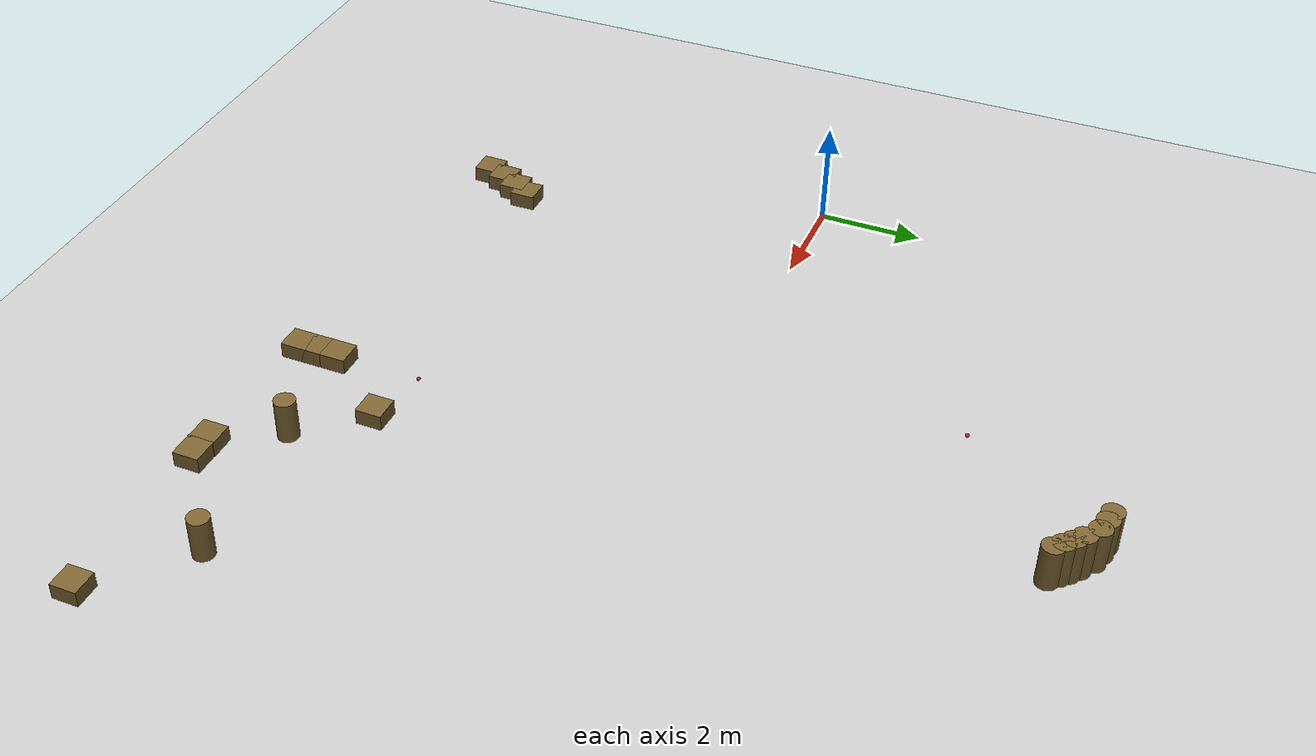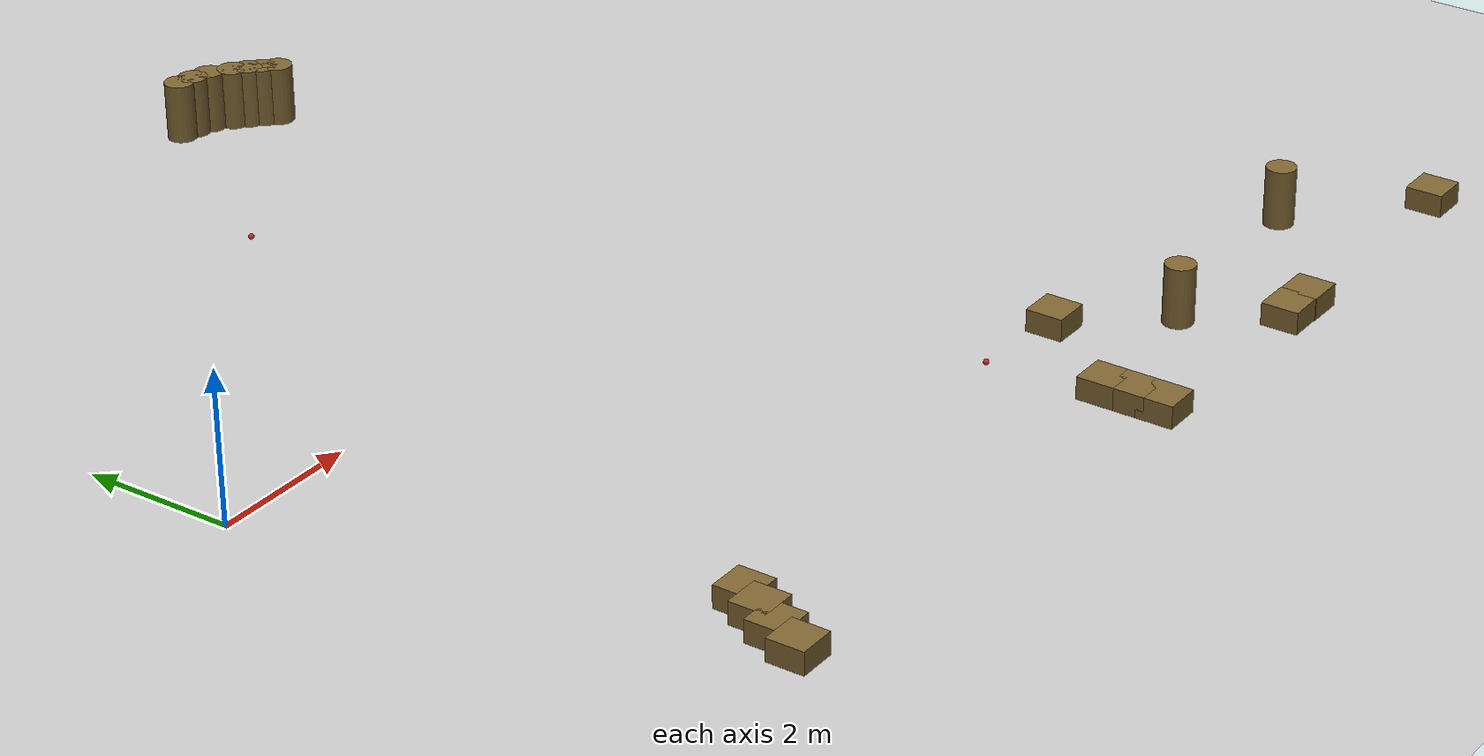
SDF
<sdf version="1.7">
 <world name="default">
  <model name="ground_plane">
   <static>1</static>
   <link name="link">
    <collision name="collision">
     <geometry><plane><normal>0 0 1</normal><size>100 100</size></plane></geometry>
     <surface><friction><ode><mu>100</mu><mu2>50</mu2></ode></friction></surface>
    </collision>
    <visual name="visual">
     <cast_shadows>0</cast_shadows>
     <geometry><plane><normal>0 0 1</normal><size>100 100</size></plane></geometry>
     <material>
      <script><uri>file://media/materials/scripts/gazebo.material</uri><name>Gazebo/Grey</name></script>
     </material>
    </visual>
   </link>
  </model>
  <model name="mini_cylinder_0_clone_0">
   <link name="link">
    <inertial>
     <mass>1</mass>
     <inertia><ixx>0.145833</ixx><ixy>0</ixy><ixz>0</ixz><iyy>0.145833</iyy><iyz>0</iyz><izz>0.125</izz></inertia>
    </inertial>
    <visual name="visual">
     <geometry><cylinder><radius>0.2</radius><length>0.8</length></cylinder></geometry>
     <material>
      <script><name>Gazebo/Grey</name><uri>file://media/materials/scripts/gazebo.material</uri></script>
      <shader type="vertex"><normal_map>__default__</normal_map></shader>
      <ambient>0.5 0.4 0.2 1</ambient>
      <diffuse>0.7 0.7 0.7 1</diffuse>
      <specular>0.01 0.01 0.01 1</specular>
      <emissive>0 0 0 1</emissive>
     </material>
    </visual>
    <collision name="collision">
     <geometry><cylinder><radius>0.2</radius><length>0.8</length></cylinder></geometry>
     <surface>
      <friction>
       <ode><mu>1</mu><mu2>1</mu2><fdir1>0 0 0</fdir1><slip1>0</slip1><slip2>0</slip2></ode>
       <torsional>
        <coefficient>1</coefficient>
        <patch_radius>0</patch_radius>
        <surface_radius>0</surface_radius>
        <use_patch_radius>1</use_patch_radius>
        <ode><slip>0</slip></ode>
       </torsional>
      </friction>
      <bounce><restitution_coefficient>0</restitution_coefficient><threshold>1e+06</threshold></bounce>
      <contact>
       <collide_without_contact>0</collide_without_contact>
       <collide_without_contact_bitmask>1</collide_without_contact_bitmask>
       <collide_bitmask>1</collide_bitmask>
       <ode>
        <soft_cfm>0</soft_cfm>
        <soft_erp>0.2</soft_erp>
        <kp>1e+13</kp>
        <kd>1</kd>
        <max_vel>0.01</max_vel>
        <min_depth>0</min_depth>
       </ode>
       <bullet>
        <split_impulse>1</split_impulse>
        <split_impulse_penetration_threshold>-0.01</split_impulse_penetration_threshold>
        <soft_cfm>0</soft_cfm>
        <soft_erp>0.2</soft_erp>
        <kp>1e+13</kp>
        <kd>1</kd>
       </bullet>
      </contact>
     </surface>
    </collision>
   </link>
   <static>1</static>
   <pose>8 6.85 0.4 0 -0 0</pose>
  </model>
  <model name="mini_cylinder_0_clone_0_clone">
   <link name="link">
    <inertial>
     <mass>1</mass>
     <inertia><ixx>0.145833</ixx><ixy>0</ixy><ixz>0</ixz><iyy>0.145833</iyy><iyz>0</iyz><izz>0.125</izz></inertia>
    </inertial>
    <visual name="visual">
     <geometry><cylinder><radius>0.2</radius><length>0.8</length></cylinder></geometry>
     <material>
      <script><name>Gazebo/Grey</name><uri>file://media/materials/scripts/gazebo.material</uri></script>
      <shader type="vertex"><normal_map>__default__</normal_map></shader>
      <ambient>0.5 0.4 0.2 1</ambient>
      <diffuse>0.7 0.7 0.7 1</diffuse>
      <specular>0.01 0.01 0.01 1</specular>
      <emissive>0 0 0 1</emissive>
     </material>
    </visual>
    <collision name="collision">
     <geometry><cylinder><radius>0.2</radius><length>0.8</length></cylinder></geometry>
     <surface>
      <friction>
       <ode><mu>1</mu><mu2>1</mu2><fdir1>0 0 0</fdir1><slip1>0</slip1><slip2>0</slip2></ode>
       <torsional>
        <coefficient>1</coefficient>
        <patch_radius>0</patch_radius>
        <surface_radius>0</surface_radius>
        <use_patch_radius>1</use_patch_radius>
        <ode><slip>0</slip></ode>
       </torsional>
      </friction>
      <bounce><restitution_coefficient>0</restitution_coefficient><threshold>1e+06</threshold></bounce>
      <contact>
       <collide_without_contact>0</collide_without_contact>
       <collide_without_contact_bitmask>1</collide_without_contact_bitmask>
       <collide_bitmask>1</collide_bitmask>
       <ode>
        <soft_cfm>0</soft_cfm>
        <soft_erp>0.2</soft_erp>
        <kp>1e+13</kp>
        <kd>1</kd>
        <max_vel>0.01</max_vel>
        <min_depth>0</min_depth>
       </ode>
       <bullet>
        <split_impulse>1</split_impulse>
        <split_impulse_penetration_threshold>-0.01</split_impulse_penetration_threshold>
        <soft_cfm>0</soft_cfm>
        <soft_erp>0.2</soft_erp>
        <kp>1e+13</kp>
        <kd>1</kd>
       </bullet>
      </contact>
     </surface>
    </collision>
   </link>
   <static>1</static>
   <pose>13.224 -6.11998 0.4 0 -0 0</pose>
  </model>
  <model name="mini_box_clone_clone_3_clone">
   <link name="link">
    <inertial>
     <mass>1</mass>
     <inertia>
      <ixx>0.166667</ixx>
      <ixy>0</ixy>
      <ixz>0</ixz>
      <iyy>0.166667</iyy>
      <iyz>0</iyz>
      <izz>0.166667</izz>
     </inertia>
    </inertial>
    <visual name="visual">
     <geometry><box><size>0.5 0.5 0.3</size></box></geometry>
     <material>
      <script><name>Gazebo/Grey</name><uri>file://media/materials/scripts/gazebo.material</uri></script>
      <shader type="vertex"><normal_map>__default__</normal_map></shader>
      <ambient>0.5 0.4 0.2 1</ambient>
      <diffuse>0.7 0.7 0.7 1</diffuse>
      <specular>0.01 0.01 0.01 1</specular>
      <emissive>0 0 0 1</emissive>
     </material>
    </visual>
    <collision name="collision">
     <geometry><box><size>0.5 0.5 0.3</size></box></geometry>
     <surface>
      <friction>
       <ode><mu>1</mu><mu2>1</mu2><fdir1>0 0 0</fdir1><slip1>0</slip1><slip2>0</slip2></ode>
       <torsional>
        <coefficient>1</coefficient>
        <patch_radius>0</patch_radius>
        <surface_radius>0</surface_radius>
        <use_patch_radius>1</use_patch_radius>
        <ode><slip>0</slip></ode>
       </torsional>
      </friction>
      <bounce><restitution_coefficient>0</restitution_coefficient><threshold>1e+06</threshold></bounce>
      <contact>
       <collide_without_contact>0</collide_without_contact>
       <collide_without_contact_bitmask>1</collide_without_contact_bitmask>
       <collide_bitmask>1</collide_bitmask>
       <ode>
        <soft_cfm>0</soft_cfm>
        <soft_erp>0.2</soft_erp>
        <kp>1e+13</kp>
        <kd>1</kd>
        <max_vel>0.01</max_vel>
        <min_depth>0</min_depth>
       </ode>
       <bullet>
        <split_impulse>1</split_impulse>
        <split_impulse_penetration_threshold>-0.01</split_impulse_penetration_threshold>
        <soft_cfm>0</soft_cfm>
        <soft_erp>0.2</soft_erp>
        <kp>1e+13</kp>
        <kd>1</kd>
       </bullet>
      </contact>
     </surface>
    </collision>
   </link>
   <static>1</static>
   <pose>11.3808 -7.50629 0.15 0 -0 0</pose>
  </model>
  <model name="mini_box_clone_clone_3_clone_2">
   <link name="link">
    <inertial>
     <mass>1</mass>
     <inertia>
      <ixx>0.166667</ixx>
      <ixy>0</ixy>
      <ixz>0</ixz>
      <iyy>0.166667</iyy>
      <iyz>0</iyz>
      <izz>0.166667</izz>
     </inertia>
    </inertial>
    <visual name="visual">
     <geometry><box><size>0.5 0.5 0.3</size></box></geometry>
     <material>
      <script><name>Gazebo/Grey</name><uri>file://media/materials/scripts/gazebo.material</uri></script>
      <shader type="vertex"><normal_map>__default__</normal_map></shader>
      <ambient>0.5 0.4 0.2 1</ambient>
      <diffuse>0.7 0.7 0.7 1</diffuse>
      <specular>0.01 0.01 0.01 1</specular>
      <emissive>0 0 0 1</emissive>
     </material>
    </visual>
    <collision name="collision">
     <geometry><box><size>0.5 0.5 0.3</size></box></geometry>
     <surface>
      <friction>
       <ode><mu>1</mu><mu2>1</mu2><fdir1>0 0 0</fdir1><slip1>0</slip1><slip2>0</slip2></ode>
       <torsional>
        <coefficient>1</coefficient>
        <patch_radius>0</patch_radius>
        <surface_radius>0</surface_radius>
        <use_patch_radius>1</use_patch_radius>
        <ode><slip>0</slip></ode>
       </torsional>
      </friction>
      <bounce><restitution_coefficient>0</restitution_coefficient><threshold>1e+06</threshold></bounce>
      <contact>
       <collide_without_contact>0</collide_without_contact>
       <collide_without_contact_bitmask>1</collide_without_contact_bitmask>
       <collide_bitmask>1</collide_bitmask>
       <ode>
        <soft_cfm>0</soft_cfm>
        <soft_erp>0.2</soft_erp>
        <kp>1e+13</kp>
        <kd>1</kd>
        <max_vel>0.01</max_vel>
        <min_depth>0</min_depth>
       </ode>
       <bullet>
        <split_impulse>1</split_impulse>
        <split_impulse_penetration_threshold>-0.01</split_impulse_penetration_threshold>
        <soft_cfm>0</soft_cfm>
        <soft_erp>0.2</soft_erp>
        <kp>1e+13</kp>
        <kd>1</kd>
       </bullet>
      </contact>
     </surface>
    </collision>
   </link>
   <static>1</static>
   <pose>14.767 -7.51176 0.15 0 -0 0</pose>
  </model>
  <model name="mini_cylinder_0_clone_0_clone_clone">
   <link name="link">
    <inertial>
     <mass>1</mass>
     <inertia><ixx>0.145833</ixx><ixy>0</ixy><ixz>0</ixz><iyy>0.145833</iyy><iyz>0</iyz><izz>0.125</izz></inertia>
    </inertial>
    <visual name="visual">
     <geometry><cylinder><radius>0.2</radius><length>0.8</length></cylinder></geometry>
     <material>
      <script><name>Gazebo/Grey</name><uri>file://media/materials/scripts/gazebo.material</uri></script>
      <shader type="vertex"><normal_map>__default__</normal_map></shader>
      <ambient>0.5 0.4 0.2 1</ambient>
      <diffuse>0.7 0.7 0.7 1</diffuse>
      <specular>0.01 0.01 0.01 1</specular>
      <emissive>0 0 0 1</emissive>
     </material>
    </visual>
    <collision name="collision">
     <geometry><cylinder><radius>0.2</radius><length>0.8</length></cylinder></geometry>
     <surface>
      <friction>
       <ode><mu>1</mu><mu2>1</mu2><fdir1>0 0 0</fdir1><slip1>0</slip1><slip2>0</slip2></ode>
       <torsional>
        <coefficient>1</coefficient>
        <patch_radius>0</patch_radius>
        <surface_radius>0</surface_radius>
        <use_patch_radius>1</use_patch_radius>
        <ode><slip>0</slip></ode>
       </torsional>
      </friction>
      <bounce><restitution_coefficient>0</restitution_coefficient><threshold>1e+06</threshold></bounce>
      <contact>
       <collide_without_contact>0</collide_without_contact>
       <collide_without_contact_bitmask>1</collide_without_contact_bitmask>
       <collide_bitmask>1</collide_bitmask>
       <ode>
        <soft_cfm>0</soft_cfm>
        <soft_erp>0.2</soft_erp>
        <kp>1e+13</kp>
        <kd>1</kd>
        <max_vel>0.01</max_vel>
        <min_depth>0</min_depth>
       </ode>
       <bullet>
        <split_impulse>1</split_impulse>
        <split_impulse_penetration_threshold>-0.01</split_impulse_penetration_threshold>
        <soft_cfm>0</soft_cfm>
        <soft_erp>0.2</soft_erp>
        <kp>1e+13</kp>
        <kd>1</kd>
       </bullet>
      </contact>
     </surface>
    </collision>
   </link>
   <static>1</static>
   <pose>10.1744 -6.38296 0.4 0 -0 0</pose>
  </model>
  <model name="target_0">
   <link name="link">
    <pose>0 0 0.0375 0 -0 0</pose>
    <inertial>
     <mass>0.1467</mass>
     <inertia>
      <ixx>8.25187e-05</ixx>
      <ixy>0</ixy>
      <ixz>0</ixz>
      <iyy>8.25187e-05</iyy>
      <iyz>0</iyz>
      <izz>8.25187e-05</izz>
     </inertia>
    </inertial>
    <velocity_decay><linear>0</linear><angular>0.005</angular></velocity_decay>
    <visual name="visual">
     <geometry><sphere><radius>0.0375</radius></sphere></geometry>
     <material>
      <script><uri>file://media/materials/scripts/gazebo.material</uri><name>Gazebo/Red</name></script>
      <shader type="pixel"/>
     </material>
    </visual>
    <collision name="collision">
     <geometry><sphere><radius>0.0375</radius></sphere></geometry>
     <surface>
      <friction>
       <ode><mu>1</mu><mu2>1</mu2><fdir1>0 0 0</fdir1><slip1>0</slip1><slip2>0</slip2></ode>
       <torsional>
        <coefficient>1</coefficient>
        <patch_radius>0</patch_radius>
        <surface_radius>0.01</surface_radius>
        <use_patch_radius>0</use_patch_radius>
        <ode><slip>0</slip></ode>
       </torsional>
      </friction>
      <bounce><restitution_coefficient>0</restitution_coefficient><threshold>1e+06</threshold></bounce>
      <contact>
       <collide_without_contact>0</collide_without_contact>
       <collide_without_contact_bitmask>1</collide_without_contact_bitmask>
       <collide_bitmask>1</collide_bitmask>
       <ode>
        <soft_cfm>0</soft_cfm>
        <soft_erp>0.2</soft_erp>
        <kp>100000</kp>
        <kd>100</kd>
        <max_vel>100</max_vel>
        <min_depth>0.001</min_depth>
       </ode>
       <bullet>
        <split_impulse>1</split_impulse>
        <split_impulse_penetration_threshold>-0.01</split_impulse_penetration_threshold>
        <soft_cfm>0</soft_cfm>
        <soft_erp>0.2</soft_erp>
        <kp>100000</kp>
        <kd>100</kd>
       </bullet>
      </contact>
     </surface>
    </collision>
   </link>
   <static>0</static>
   <pose>5.5098 4.40714 -0.001014 0 -0 0</pose>
  </model>
  <model name="target_3">
   <link name="link">
    <pose>0 0 0.0375 0 -0 0</pose>
    <inertial>
     <mass>0.1467</mass>
     <inertia>
      <ixx>8.25187e-05</ixx>
      <ixy>0</ixy>
      <ixz>0</ixz>
      <iyy>8.25187e-05</iyy>
      <iyz>0</iyz>
      <izz>8.25187e-05</izz>
     </inertia>
    </inertial>
    <velocity_decay><linear>0</linear><angular>0.005</angular></velocity_decay>
    <visual name="visual">
     <geometry><sphere><radius>0.0375</radius></sphere></geometry>
     <material>
      <script><uri>file://media/materials/scripts/gazebo.material</uri><name>Gazebo/Red</name></script>
      <shader type="pixel"/>
     </material>
    </visual>
    <collision name="collision">
     <geometry><sphere><radius>0.0375</radius></sphere></geometry>
     <surface>
      <friction>
       <ode><mu>1</mu><mu2>1</mu2><fdir1>0 0 0</fdir1><slip1>0</slip1><slip2>0</slip2></ode>
       <torsional>
        <coefficient>1</coefficient>
        <patch_radius>0</patch_radius>
        <surface_radius>0.01</surface_radius>
        <use_patch_radius>0</use_patch_radius>
        <ode><slip>0</slip></ode>
       </torsional>
      </friction>
      <bounce><restitution_coefficient>0</restitution_coefficient><threshold>1e+06</threshold></bounce>
      <contact>
       <collide_without_contact>0</collide_without_contact>
       <collide_without_contact_bitmask>1</collide_without_contact_bitmask>
       <collide_bitmask>1</collide_bitmask>
       <ode>
        <soft_cfm>0</soft_cfm>
        <soft_erp>0.2</soft_erp>
        <kp>100000</kp>
        <kd>100</kd>
        <max_vel>100</max_vel>
        <min_depth>0.001</min_depth>
       </ode>
       <bullet>
        <split_impulse>1</split_impulse>
        <split_impulse_penetration_threshold>-0.01</split_impulse_penetration_threshold>
        <soft_cfm>0</soft_cfm>
        <soft_erp>0.2</soft_erp>
        <kp>100000</kp>
        <kd>100</kd>
       </bullet>
      </contact>
     </surface>
    </collision>
   </link>
   <static>0</static>
   <pose>7.94169 -5.02618 -0.001014 0 -0 0</pose>
  </model>
  <model name="mini_cylinder_0_clone_0_clone_5">
   <link name="link">
    <inertial>
     <mass>1</mass>
     <inertia><ixx>0.145833</ixx><ixy>0</ixy><ixz>0</ixz><iyy>0.145833</iyy><iyz>0</iyz><izz>0.125</izz></inertia>
    </inertial>
    <visual name="visual">
     <geometry><cylinder><radius>0.2</radius><length>0.8</length></cylinder></geometry>
     <material>
      <script><name>Gazebo/Grey</name><uri>file://media/materials/scripts/gazebo.material</uri></script>
      <shader type="vertex"><normal_map>__default__</normal_map></shader>
      <ambient>0.5 0.4 0.2 1</ambient>
      <diffuse>0.7 0.7 0.7 1</diffuse>
      <specular>0.01 0.01 0.01 1</specular>
      <emissive>0 0 0 1</emissive>
     </material>
    </visual>
    <collision name="collision">
     <geometry><cylinder><radius>0.2</radius><length>0.8</length></cylinder></geometry>
     <surface>
      <friction>
       <ode><mu>1</mu><mu2>1</mu2><fdir1>0 0 0</fdir1><slip1>0</slip1><slip2>0</slip2></ode>
       <torsional>
        <coefficient>1</coefficient>
        <patch_radius>0</patch_radius>
        <surface_radius>0</surface_radius>
        <use_patch_radius>1</use_patch_radius>
        <ode><slip>0</slip></ode>
       </torsional>
      </friction>
      <bounce><restitution_coefficient>0</restitution_coefficient><threshold>1e+06</threshold></bounce>
      <contact>
       <collide_without_contact>0</collide_without_contact>
       <collide_without_contact_bitmask>1</collide_without_contact_bitmask>
       <collide_bitmask>1</collide_bitmask>
       <ode>
        <soft_cfm>0</soft_cfm>
        <soft_erp>0.2</soft_erp>
        <kp>1e+13</kp>
        <kd>1</kd>
        <max_vel>0.01</max_vel>
        <min_depth>0</min_depth>
       </ode>
       <bullet>
        <split_impulse>1</split_impulse>
        <split_impulse_penetration_threshold>-0.01</split_impulse_penetration_threshold>
        <soft_cfm>0</soft_cfm>
        <soft_erp>0.2</soft_erp>
        <kp>1e+13</kp>
        <kd>1</kd>
       </bullet>
      </contact>
     </surface>
    </collision>
   </link>
   <static>1</static>
   <pose>7.7482 7.04047 0.4 0 -0 0</pose>
  </model>
  <model name="mini_cylinder_0_clone_0_clone_6">
   <link name="link">
    <inertial>
     <mass>1</mass>
     <inertia><ixx>0.145833</ixx><ixy>0</ixy><ixz>0</ixz><iyy>0.145833</iyy><iyz>0</iyz><izz>0.125</izz></inertia>
    </inertial>
    <visual name="visual">
     <geometry><cylinder><radius>0.2</radius><length>0.8</length></cylinder></geometry>
     <material>
      <script><name>Gazebo/Grey</name><uri>file://media/materials/scripts/gazebo.material</uri></script>
      <shader type="vertex"><normal_map>__default__</normal_map></shader>
      <ambient>0.5 0.4 0.2 1</ambient>
      <diffuse>0.7 0.7 0.7 1</diffuse>
      <specular>0.01 0.01 0.01 1</specular>
      <emissive>0 0 0 1</emissive>
     </material>
    </visual>
    <collision name="collision">
     <geometry><cylinder><radius>0.2</radius><length>0.8</length></cylinder></geometry>
     <surface>
      <friction>
       <ode><mu>1</mu><mu2>1</mu2><fdir1>0 0 0</fdir1><slip1>0</slip1><slip2>0</slip2></ode>
       <torsional>
        <coefficient>1</coefficient>
        <patch_radius>0</patch_radius>
        <surface_radius>0</surface_radius>
        <use_patch_radius>1</use_patch_radius>
        <ode><slip>0</slip></ode>
       </torsional>
      </friction>
      <bounce><restitution_coefficient>0</restitution_coefficient><threshold>1e+06</threshold></bounce>
      <contact>
       <collide_without_contact>0</collide_without_contact>
       <collide_without_contact_bitmask>1</collide_without_contact_bitmask>
       <collide_bitmask>1</collide_bitmask>
       <ode>
        <soft_cfm>0</soft_cfm>
        <soft_erp>0.2</soft_erp>
        <kp>1e+13</kp>
        <kd>1</kd>
        <max_vel>0.01</max_vel>
        <min_depth>0</min_depth>
       </ode>
       <bullet>
        <split_impulse>1</split_impulse>
        <split_impulse_penetration_threshold>-0.01</split_impulse_penetration_threshold>
        <soft_cfm>0</soft_cfm>
        <soft_erp>0.2</soft_erp>
        <kp>1e+13</kp>
        <kd>1</kd>
       </bullet>
      </contact>
     </surface>
    </collision>
   </link>
   <static>1</static>
   <pose>7.50695 7.1078 0.4 0 -0 0</pose>
  </model>
  <model name="mini_cylinder_0_clone_0_clone_7">
   <link name="link">
    <inertial>
     <mass>1</mass>
     <inertia><ixx>0.145833</ixx><ixy>0</ixy><ixz>0</ixz><iyy>0.145833</iyy><iyz>0</iyz><izz>0.125</izz></inertia>
    </inertial>
    <visual name="visual">
     <geometry><cylinder><radius>0.2</radius><length>0.8</length></cylinder></geometry>
     <material>
      <script><name>Gazebo/Grey</name><uri>file://media/materials/scripts/gazebo.material</uri></script>
      <shader type="vertex"><normal_map>__default__</normal_map></shader>
      <ambient>0.5 0.4 0.2 1</ambient>
      <diffuse>0.7 0.7 0.7 1</diffuse>
      <specular>0.01 0.01 0.01 1</specular>
      <emissive>0 0 0 1</emissive>
     </material>
    </visual>
    <collision name="collision">
     <geometry><cylinder><radius>0.2</radius><length>0.8</length></cylinder></geometry>
     <surface>
      <friction>
       <ode><mu>1</mu><mu2>1</mu2><fdir1>0 0 0</fdir1><slip1>0</slip1><slip2>0</slip2></ode>
       <torsional>
        <coefficient>1</coefficient>
        <patch_radius>0</patch_radius>
        <surface_radius>0</surface_radius>
        <use_patch_radius>1</use_patch_radius>
        <ode><slip>0</slip></ode>
       </torsional>
      </friction>
      <bounce><restitution_coefficient>0</restitution_coefficient><threshold>1e+06</threshold></bounce>
      <contact>
       <collide_without_contact>0</collide_without_contact>
       <collide_without_contact_bitmask>1</collide_without_contact_bitmask>
       <collide_bitmask>1</collide_bitmask>
       <ode>
        <soft_cfm>0</soft_cfm>
        <soft_erp>0.2</soft_erp>
        <kp>1e+13</kp>
        <kd>1</kd>
        <max_vel>0.01</max_vel>
        <min_depth>0</min_depth>
       </ode>
       <bullet>
        <split_impulse>1</split_impulse>
        <split_impulse_penetration_threshold>-0.01</split_impulse_penetration_threshold>
        <soft_cfm>0</soft_cfm>
        <soft_erp>0.2</soft_erp>
        <kp>1e+13</kp>
        <kd>1</kd>
       </bullet>
      </contact>
     </surface>
    </collision>
   </link>
   <static>1</static>
   <pose>7.28252 7.14141 0.4 0 -0 0</pose>
  </model>
  <model name="mini_box_clone_clone_0_clone_7">
   <link name="link">
    <inertial>
     <mass>1</mass>
     <inertia>
      <ixx>0.166667</ixx>
      <ixy>0</ixy>
      <ixz>0</ixz>
      <iyy>0.166667</iyy>
      <iyz>0</iyz>
      <izz>0.166667</izz>
     </inertia>
    </inertial>
    <visual name="visual">
     <geometry><box><size>0.5 0.5 0.3</size></box></geometry>
     <material>
      <script><name>Gazebo/Grey</name><uri>file://media/materials/scripts/gazebo.material</uri></script>
      <shader type="vertex"><normal_map>__default__</normal_map></shader>
      <ambient>0.5 0.4 0.2 1</ambient>
      <diffuse>0.7 0.7 0.7 1</diffuse>
      <specular>0.01 0.01 0.01 1</specular>
      <emissive>0 0 0 1</emissive>
     </material>
    </visual>
    <collision name="collision">
     <geometry><box><size>0.5 0.5 0.3</size></box></geometry>
     <surface>
      <friction>
       <ode><mu>1</mu><mu2>1</mu2><fdir1>0 0 0</fdir1><slip1>0</slip1><slip2>0</slip2></ode>
       <torsional>
        <coefficient>1</coefficient>
        <patch_radius>0</patch_radius>
        <surface_radius>0</surface_radius>
        <use_patch_radius>1</use_patch_radius>
        <ode><slip>0</slip></ode>
       </torsional>
      </friction>
      <bounce><restitution_coefficient>0</restitution_coefficient><threshold>1e+06</threshold></bounce>
      <contact>
       <collide_without_contact>0</collide_without_contact>
       <collide_without_contact_bitmask>1</collide_without_contact_bitmask>
       <collide_bitmask>1</collide_bitmask>
       <ode>
        <soft_cfm>0</soft_cfm>
        <soft_erp>0.2</soft_erp>
        <kp>1e+13</kp>
        <kd>1</kd>
        <max_vel>0.01</max_vel>
        <min_depth>0</min_depth>
       </ode>
       <bullet>
        <split_impulse>1</split_impulse>
        <split_impulse_penetration_threshold>-0.01</split_impulse_penetration_threshold>
        <soft_cfm>0</soft_cfm>
        <soft_erp>0.2</soft_erp>
        <kp>1e+13</kp>
        <kd>1</kd>
       </bullet>
      </contact>
     </surface>
    </collision>
   </link>
   <static>1</static>
   <pose>10.9272 -7.496 0.15 0 -0 0</pose>
  </model>
  <model name="mini_box_clone_clone_0_clone_15">
   <link name="link">
    <inertial>
     <mass>1</mass>
     <inertia>
      <ixx>0.166667</ixx>
      <ixy>0</ixy>
      <ixz>0</ixz>
      <iyy>0.166667</iyy>
      <iyz>0</iyz>
      <izz>0.166667</izz>
     </inertia>
    </inertial>
    <visual name="visual">
     <geometry><box><size>0.5 0.5 0.3</size></box></geometry>
     <material>
      <script><name>Gazebo/Grey</name><uri>file://media/materials/scripts/gazebo.material</uri></script>
      <shader type="vertex"><normal_map>__default__</normal_map></shader>
      <ambient>0.5 0.4 0.2 1</ambient>
      <diffuse>0.7 0.7 0.7 1</diffuse>
      <specular>0.01 0.01 0.01 1</specular>
      <emissive>0 0 0 1</emissive>
     </material>
    </visual>
    <collision name="collision">
     <geometry><box><size>0.5 0.5 0.3</size></box></geometry>
     <surface>
      <friction>
       <ode><mu>1</mu><mu2>1</mu2><fdir1>0 0 0</fdir1><slip1>0</slip1><slip2>0</slip2></ode>
       <torsional>
        <coefficient>1</coefficient>
        <patch_radius>0</patch_radius>
        <surface_radius>0</surface_radius>
        <use_patch_radius>1</use_patch_radius>
        <ode><slip>0</slip></ode>
       </torsional>
      </friction>
      <bounce><restitution_coefficient>0</restitution_coefficient><threshold>1e+06</threshold></bounce>
      <contact>
       <collide_without_contact>0</collide_without_contact>
       <collide_without_contact_bitmask>1</collide_without_contact_bitmask>
       <collide_bitmask>1</collide_bitmask>
       <ode>
        <soft_cfm>0</soft_cfm>
        <soft_erp>0.2</soft_erp>
        <kp>1e+13</kp>
        <kd>1</kd>
        <max_vel>0.01</max_vel>
        <min_depth>0</min_depth>
       </ode>
       <bullet>
        <split_impulse>1</split_impulse>
        <split_impulse_penetration_threshold>-0.01</split_impulse_penetration_threshold>
        <soft_cfm>0</soft_cfm>
        <soft_erp>0.2</soft_erp>
        <kp>1e+13</kp>
        <kd>1</kd>
       </bullet>
      </contact>
     </surface>
    </collision>
   </link>
   <static>1</static>
   <pose>8.07022 -6.5893 0.15 0 -0 0</pose>
  </model>
  <model name="mini_box_clone_clone_0_clone_16">
   <link name="link">
    <inertial>
     <mass>1</mass>
     <inertia>
      <ixx>0.166667</ixx>
      <ixy>0</ixy>
      <ixz>0</ixz>
      <iyy>0.166667</iyy>
      <iyz>0</iyz>
      <izz>0.166667</izz>
     </inertia>
    </inertial>
    <visual name="visual">
     <geometry><box><size>0.5 0.5 0.3</size></box></geometry>
     <material>
      <script><name>Gazebo/Grey</name><uri>file://media/materials/scripts/gazebo.material</uri></script>
      <shader type="vertex"><normal_map>__default__</normal_map></shader>
      <ambient>0.5 0.4 0.2 1</ambient>
      <diffuse>0.7 0.7 0.7 1</diffuse>
      <specular>0.01 0.01 0.01 1</specular>
      <emissive>0 0 0 1</emissive>
     </material>
    </visual>
    <collision name="collision">
     <geometry><box><size>0.5 0.5 0.3</size></box></geometry>
     <surface>
      <friction>
       <ode><mu>1</mu><mu2>1</mu2><fdir1>0 0 0</fdir1><slip1>0</slip1><slip2>0</slip2></ode>
       <torsional>
        <coefficient>1</coefficient>
        <patch_radius>0</patch_radius>
        <surface_radius>0</surface_radius>
        <use_patch_radius>1</use_patch_radius>
        <ode><slip>0</slip></ode>
       </torsional>
      </friction>
      <bounce><restitution_coefficient>0</restitution_coefficient><threshold>1e+06</threshold></bounce>
      <contact>
       <collide_without_contact>0</collide_without_contact>
       <collide_without_contact_bitmask>1</collide_without_contact_bitmask>
       <collide_bitmask>1</collide_bitmask>
       <ode>
        <soft_cfm>0</soft_cfm>
        <soft_erp>0.2</soft_erp>
        <kp>1e+13</kp>
        <kd>1</kd>
        <max_vel>0.01</max_vel>
        <min_depth>0</min_depth>
       </ode>
       <bullet>
        <split_impulse>1</split_impulse>
        <split_impulse_penetration_threshold>-0.01</split_impulse_penetration_threshold>
        <soft_cfm>0</soft_cfm>
        <soft_erp>0.2</soft_erp>
        <kp>1e+13</kp>
        <kd>1</kd>
       </bullet>
      </contact>
     </surface>
    </collision>
   </link>
   <static>1</static>
   <pose>8.07022 -7.00162 0.15 0 -0 0</pose>
  </model>
  <model name="mini_box_clone_clone_0_clone_17">
   <link name="link">
    <inertial>
     <mass>1</mass>
     <inertia>
      <ixx>0.166667</ixx>
      <ixy>0</ixy>
      <ixz>0</ixz>
      <iyy>0.166667</iyy>
      <iyz>0</iyz>
      <izz>0.166667</izz>
     </inertia>
    </inertial>
    <visual name="visual">
     <geometry><box><size>0.5 0.5 0.3</size></box></geometry>
     <material>
      <script><name>Gazebo/Grey</name><uri>file://media/materials/scripts/gazebo.material</uri></script>
      <shader type="vertex"><normal_map>__default__</normal_map></shader>
      <ambient>0.5 0.4 0.2 1</ambient>
      <diffuse>0.7 0.7 0.7 1</diffuse>
      <specular>0.01 0.01 0.01 1</specular>
      <emissive>0 0 0 1</emissive>
     </material>
    </visual>
    <collision name="collision">
     <geometry><box><size>0.5 0.5 0.3</size></box></geometry>
     <surface>
      <friction>
       <ode><mu>1</mu><mu2>1</mu2><fdir1>0 0 0</fdir1><slip1>0</slip1><slip2>0</slip2></ode>
       <torsional>
        <coefficient>1</coefficient>
        <patch_radius>0</patch_radius>
        <surface_radius>0</surface_radius>
        <use_patch_radius>1</use_patch_radius>
        <ode><slip>0</slip></ode>
       </torsional>
      </friction>
      <bounce><restitution_coefficient>0</restitution_coefficient><threshold>1e+06</threshold></bounce>
      <contact>
       <collide_without_contact>0</collide_without_contact>
       <collide_without_contact_bitmask>1</collide_without_contact_bitmask>
       <collide_bitmask>1</collide_bitmask>
       <ode>
        <soft_cfm>0</soft_cfm>
        <soft_erp>0.2</soft_erp>
        <kp>1e+13</kp>
        <kd>1</kd>
        <max_vel>0.01</max_vel>
        <min_depth>0</min_depth>
       </ode>
       <bullet>
        <split_impulse>1</split_impulse>
        <split_impulse_penetration_threshold>-0.01</split_impulse_penetration_threshold>
        <soft_cfm>0</soft_cfm>
        <soft_erp>0.2</soft_erp>
        <kp>1e+13</kp>
        <kd>1</kd>
       </bullet>
      </contact>
     </surface>
    </collision>
   </link>
   <static>1</static>
   <pose>8.07022 -7.38602 0.15 0 -0 0</pose>
  </model>
  <model name="mini_box_clone_clone_0_clone_27">
   <link name="link">
    <inertial>
     <mass>1</mass>
     <inertia>
      <ixx>0.166667</ixx>
      <ixy>0</ixy>
      <ixz>0</ixz>
      <iyy>0.166667</iyy>
      <iyz>0</iyz>
      <izz>0.166667</izz>
     </inertia>
    </inertial>
    <visual name="visual">
     <geometry><box><size>0.5 0.5 0.3</size></box></geometry>
     <material>
      <script><name>Gazebo/Grey</name><uri>file://media/materials/scripts/gazebo.material</uri></script>
      <shader type="vertex"><normal_map>__default__</normal_map></shader>
      <ambient>0.5 0.4 0.2 1</ambient>
      <diffuse>0.7 0.7 0.7 1</diffuse>
      <specular>0.01 0.01 0.01 1</specular>
      <emissive>0 0 0 1</emissive>
     </material>
    </visual>
    <collision name="collision">
     <geometry><box><size>0.5 0.5 0.3</size></box></geometry>
     <surface>
      <friction>
       <ode><mu>1</mu><mu2>1</mu2><fdir1>0 0 0</fdir1><slip1>0</slip1><slip2>0</slip2></ode>
       <torsional>
        <coefficient>1</coefficient>
        <patch_radius>0</patch_radius>
        <surface_radius>0</surface_radius>
        <use_patch_radius>1</use_patch_radius>
        <ode><slip>0</slip></ode>
       </torsional>
      </friction>
      <bounce><restitution_coefficient>0</restitution_coefficient><threshold>1e+06</threshold></bounce>
      <contact>
       <collide_without_contact>0</collide_without_contact>
       <collide_without_contact_bitmask>1</collide_without_contact_bitmask>
       <collide_bitmask>1</collide_bitmask>
       <ode>
        <soft_cfm>0</soft_cfm>
        <soft_erp>0.2</soft_erp>
        <kp>1e+13</kp>
        <kd>1</kd>
        <max_vel>0.01</max_vel>
        <min_depth>0</min_depth>
       </ode>
       <bullet>
        <split_impulse>1</split_impulse>
        <split_impulse_penetration_threshold>-0.01</split_impulse_penetration_threshold>
        <soft_cfm>0</soft_cfm>
        <soft_erp>0.2</soft_erp>
        <kp>1e+13</kp>
        <kd>1</kd>
       </bullet>
      </contact>
     </surface>
    </collision>
   </link>
   <static>1</static>
   <pose>9.17414 -5.22473 0.15 0 -0 0</pose>
  </model>
  <model name="mini_box_clone_clone_0_clone_33">
   <link name="link">
    <inertial>
     <mass>1</mass>
     <inertia>
      <ixx>0.166667</ixx>
      <ixy>0</ixy>
      <ixz>0</ixz>
      <iyy>0.166667</iyy>
      <iyz>0</iyz>
      <izz>0.166667</izz>
     </inertia>
    </inertial>
    <visual name="visual">
     <geometry><box><size>0.5 0.5 0.3</size></box></geometry>
     <material>
      <script><name>Gazebo/Grey</name><uri>file://media/materials/scripts/gazebo.material</uri></script>
      <shader type="vertex"><normal_map>__default__</normal_map></shader>
      <ambient>0.5 0.4 0.2 1</ambient>
      <diffuse>0.7 0.7 0.7 1</diffuse>
      <specular>0.01 0.01 0.01 1</specular>
      <emissive>0 0 0 1</emissive>
     </material>
    </visual>
    <collision name="collision">
     <geometry><box><size>0.5 0.5 0.3</size></box></geometry>
     <surface>
      <friction>
       <ode><mu>1</mu><mu2>1</mu2><fdir1>0 0 0</fdir1><slip1>0</slip1><slip2>0</slip2></ode>
       <torsional>
        <coefficient>1</coefficient>
        <patch_radius>0</patch_radius>
        <surface_radius>0</surface_radius>
        <use_patch_radius>1</use_patch_radius>
        <ode><slip>0</slip></ode>
       </torsional>
      </friction>
      <bounce><restitution_coefficient>0</restitution_coefficient><threshold>1e+06</threshold></bounce>
      <contact>
       <collide_without_contact>0</collide_without_contact>
       <collide_without_contact_bitmask>1</collide_without_contact_bitmask>
       <collide_bitmask>1</collide_bitmask>
       <ode>
        <soft_cfm>0</soft_cfm>
        <soft_erp>0.2</soft_erp>
        <kp>1e+13</kp>
        <kd>1</kd>
        <max_vel>0.01</max_vel>
        <min_depth>0</min_depth>
       </ode>
       <bullet>
        <split_impulse>1</split_impulse>
        <split_impulse_penetration_threshold>-0.01</split_impulse_penetration_threshold>
        <soft_cfm>0</soft_cfm>
        <soft_erp>0.2</soft_erp>
        <kp>1e+13</kp>
        <kd>1</kd>
       </bullet>
      </contact>
     </surface>
    </collision>
   </link>
   <static>1</static>
   <pose>1.35429 -6.79088 0.15 0 -0 0</pose>
  </model>
  <model name="mini_box_clone_clone_0_clone_34">
   <link name="link">
    <inertial>
     <mass>1</mass>
     <inertia>
      <ixx>0.166667</ixx>
      <ixy>0</ixy>
      <ixz>0</ixz>
      <iyy>0.166667</iyy>
      <iyz>0</iyz>
      <izz>0.166667</izz>
     </inertia>
    </inertial>
    <visual name="visual">
     <geometry><box><size>0.5 0.5 0.3</size></box></geometry>
     <material>
      <script><name>Gazebo/Grey</name><uri>file://media/materials/scripts/gazebo.material</uri></script>
      <shader type="vertex"><normal_map>__default__</normal_map></shader>
      <ambient>0.5 0.4 0.2 1</ambient>
      <diffuse>0.7 0.7 0.7 1</diffuse>
      <specular>0.01 0.01 0.01 1</specular>
      <emissive>0 0 0 1</emissive>
     </material>
    </visual>
    <collision name="collision">
     <geometry><box><size>0.5 0.5 0.3</size></box></geometry>
     <surface>
      <friction>
       <ode><mu>1</mu><mu2>1</mu2><fdir1>0 0 0</fdir1><slip1>0</slip1><slip2>0</slip2></ode>
       <torsional>
        <coefficient>1</coefficient>
        <patch_radius>0</patch_radius>
        <surface_radius>0</surface_radius>
        <use_patch_radius>1</use_patch_radius>
        <ode><slip>0</slip></ode>
       </torsional>
      </friction>
      <bounce><restitution_coefficient>0</restitution_coefficient><threshold>1e+06</threshold></bounce>
      <contact>
       <collide_without_contact>0</collide_without_contact>
       <collide_without_contact_bitmask>1</collide_without_contact_bitmask>
       <collide_bitmask>1</collide_bitmask>
       <ode>
        <soft_cfm>0</soft_cfm>
        <soft_erp>0.2</soft_erp>
        <kp>1e+13</kp>
        <kd>1</kd>
        <max_vel>0.01</max_vel>
        <min_depth>0</min_depth>
       </ode>
       <bullet>
        <split_impulse>1</split_impulse>
        <split_impulse_penetration_threshold>-0.01</split_impulse_penetration_threshold>
        <soft_cfm>0</soft_cfm>
        <soft_erp>0.2</soft_erp>
        <kp>1e+13</kp>
        <kd>1</kd>
       </bullet>
      </contact>
     </surface>
    </collision>
   </link>
   <static>1</static>
   <pose>1.52837 -6.39312 0.15 0 -0 0</pose>
  </model>
  <model name="mini_box_clone_clone_0_clone_35">
   <link name="link">
    <inertial>
     <mass>1</mass>
     <inertia>
      <ixx>0.166667</ixx>
      <ixy>0</ixy>
      <ixz>0</ixz>
      <iyy>0.166667</iyy>
      <iyz>0</iyz>
      <izz>0.166667</izz>
     </inertia>
    </inertial>
    <visual name="visual">
     <geometry><box><size>0.5 0.5 0.3</size></box></geometry>
     <material>
      <script><name>Gazebo/Grey</name><uri>file://media/materials/scripts/gazebo.material</uri></script>
      <shader type="vertex"><normal_map>__default__</normal_map></shader>
      <ambient>0.5 0.4 0.2 1</ambient>
      <diffuse>0.7 0.7 0.7 1</diffuse>
      <specular>0.01 0.01 0.01 1</specular>
      <emissive>0 0 0 1</emissive>
     </material>
    </visual>
    <collision name="collision">
     <geometry><box><size>0.5 0.5 0.3</size></box></geometry>
     <surface>
      <friction>
       <ode><mu>1</mu><mu2>1</mu2><fdir1>0 0 0</fdir1><slip1>0</slip1><slip2>0</slip2></ode>
       <torsional>
        <coefficient>1</coefficient>
        <patch_radius>0</patch_radius>
        <surface_radius>0</surface_radius>
        <use_patch_radius>1</use_patch_radius>
        <ode><slip>0</slip></ode>
       </torsional>
      </friction>
      <bounce><restitution_coefficient>0</restitution_coefficient><threshold>1e+06</threshold></bounce>
      <contact>
       <collide_without_contact>0</collide_without_contact>
       <collide_without_contact_bitmask>1</collide_without_contact_bitmask>
       <collide_bitmask>1</collide_bitmask>
       <ode>
        <soft_cfm>0</soft_cfm>
        <soft_erp>0.2</soft_erp>
        <kp>1e+13</kp>
        <kd>1</kd>
        <max_vel>0.01</max_vel>
        <min_depth>0</min_depth>
       </ode>
       <bullet>
        <split_impulse>1</split_impulse>
        <split_impulse_penetration_threshold>-0.01</split_impulse_penetration_threshold>
        <soft_cfm>0</soft_cfm>
        <soft_erp>0.2</soft_erp>
        <kp>1e+13</kp>
        <kd>1</kd>
       </bullet>
      </contact>
     </surface>
    </collision>
   </link>
   <static>1</static>
   <pose>1.72725 -6.04496 0.15 0 -0 0</pose>
  </model>
  <model name="mini_box_clone_clone_0_clone_36">
   <link name="link">
    <inertial>
     <mass>1</mass>
     <inertia>
      <ixx>0.166667</ixx>
      <ixy>0</ixy>
      <ixz>0</ixz>
      <iyy>0.166667</iyy>
      <iyz>0</iyz>
      <izz>0.166667</izz>
     </inertia>
    </inertial>
    <visual name="visual">
     <geometry><box><size>0.5 0.5 0.3</size></box></geometry>
     <material>
      <script><name>Gazebo/Grey</name><uri>file://media/materials/scripts/gazebo.material</uri></script>
      <shader type="vertex"><normal_map>__default__</normal_map></shader>
      <ambient>0.5 0.4 0.2 1</ambient>
      <diffuse>0.7 0.7 0.7 1</diffuse>
      <specular>0.01 0.01 0.01 1</specular>
      <emissive>0 0 0 1</emissive>
     </material>
    </visual>
    <collision name="collision">
     <geometry><box><size>0.5 0.5 0.3</size></box></geometry>
     <surface>
      <friction>
       <ode><mu>1</mu><mu2>1</mu2><fdir1>0 0 0</fdir1><slip1>0</slip1><slip2>0</slip2></ode>
       <torsional>
        <coefficient>1</coefficient>
        <patch_radius>0</patch_radius>
        <surface_radius>0</surface_radius>
        <use_patch_radius>1</use_patch_radius>
        <ode><slip>0</slip></ode>
       </torsional>
      </friction>
      <bounce><restitution_coefficient>0</restitution_coefficient><threshold>1e+06</threshold></bounce>
      <contact>
       <collide_without_contact>0</collide_without_contact>
       <collide_without_contact_bitmask>1</collide_without_contact_bitmask>
       <collide_bitmask>1</collide_bitmask>
       <ode>
        <soft_cfm>0</soft_cfm>
        <soft_erp>0.2</soft_erp>
        <kp>1e+13</kp>
        <kd>1</kd>
        <max_vel>0.01</max_vel>
        <min_depth>0</min_depth>
       </ode>
       <bullet>
        <split_impulse>1</split_impulse>
        <split_impulse_penetration_threshold>-0.01</split_impulse_penetration_threshold>
        <soft_cfm>0</soft_cfm>
        <soft_erp>0.2</soft_erp>
        <kp>1e+13</kp>
        <kd>1</kd>
       </bullet>
      </contact>
     </surface>
    </collision>
   </link>
   <static>1</static>
   <pose>1.90133 -5.72175 0.15 0 -0 0</pose>
  </model>
  <model name="mini_cylinder_0_clone_0_clone_8">
   <link name="link">
    <inertial>
     <mass>1</mass>
     <inertia><ixx>0.145833</ixx><ixy>0</ixy><ixz>0</ixz><iyy>0.145833</iyy><iyz>0</iyz><izz>0.125</izz></inertia>
    </inertial>
    <visual name="visual">
     <geometry><cylinder><radius>0.2</radius><length>0.8</length></cylinder></geometry>
     <material>
      <script><name>Gazebo/Grey</name><uri>file://media/materials/scripts/gazebo.material</uri></script>
      <shader type="vertex"><normal_map>__default__</normal_map></shader>
      <ambient>0.5 0.4 0.2 1</ambient>
      <diffuse>0.7 0.7 0.7 1</diffuse>
      <specular>0.01 0.01 0.01 1</specular>
      <emissive>0 0 0 1</emissive>
     </material>
    </visual>
    <collision name="collision">
     <geometry><cylinder><radius>0.2</radius><length>0.8</length></cylinder></geometry>
     <surface>
      <friction>
       <ode><mu>1</mu><mu2>1</mu2><fdir1>0 0 0</fdir1><slip1>0</slip1><slip2>0</slip2></ode>
       <torsional>
        <coefficient>1</coefficient>
        <patch_radius>0</patch_radius>
        <surface_radius>0</surface_radius>
        <use_patch_radius>1</use_patch_radius>
        <ode><slip>0</slip></ode>
       </torsional>
      </friction>
      <bounce><restitution_coefficient>0</restitution_coefficient><threshold>1e+06</threshold></bounce>
      <contact>
       <collide_without_contact>0</collide_without_contact>
       <collide_without_contact_bitmask>1</collide_without_contact_bitmask>
       <collide_bitmask>1</collide_bitmask>
       <ode>
        <soft_cfm>0</soft_cfm>
        <soft_erp>0.2</soft_erp>
        <kp>1e+13</kp>
        <kd>1</kd>
        <max_vel>0.01</max_vel>
        <min_depth>0</min_depth>
       </ode>
       <bullet>
        <split_impulse>1</split_impulse>
        <split_impulse_penetration_threshold>-0.01</split_impulse_penetration_threshold>
        <soft_cfm>0</soft_cfm>
        <soft_erp>0.2</soft_erp>
        <kp>1e+13</kp>
        <kd>1</kd>
       </bullet>
      </contact>
     </surface>
    </collision>
   </link>
   <static>1</static>
   <pose>8.15738 6.71558 0.4 0 -0 0</pose>
  </model>
  <model name="mini_cylinder_0_clone_0_clone_9">
   <link name="link">
    <inertial>
     <mass>1</mass>
     <inertia><ixx>0.145833</ixx><ixy>0</ixy><ixz>0</ixz><iyy>0.145833</iyy><iyz>0</iyz><izz>0.125</izz></inertia>
    </inertial>
    <visual name="visual">
     <geometry><cylinder><radius>0.2</radius><length>0.8</length></cylinder></geometry>
     <material>
      <script><name>Gazebo/Grey</name><uri>file://media/materials/scripts/gazebo.material</uri></script>
      <shader type="vertex"><normal_map>__default__</normal_map></shader>
      <ambient>0.5 0.4 0.2 1</ambient>
      <diffuse>0.7 0.7 0.7 1</diffuse>
      <specular>0.01 0.01 0.01 1</specular>
      <emissive>0 0 0 1</emissive>
     </material>
    </visual>
    <collision name="collision">
     <geometry><cylinder><radius>0.2</radius><length>0.8</length></cylinder></geometry>
     <surface>
      <friction>
       <ode><mu>1</mu><mu2>1</mu2><fdir1>0 0 0</fdir1><slip1>0</slip1><slip2>0</slip2></ode>
       <torsional>
        <coefficient>1</coefficient>
        <patch_radius>0</patch_radius>
        <surface_radius>0</surface_radius>
        <use_patch_radius>1</use_patch_radius>
        <ode><slip>0</slip></ode>
       </torsional>
      </friction>
      <bounce><restitution_coefficient>0</restitution_coefficient><threshold>1e+06</threshold></bounce>
      <contact>
       <collide_without_contact>0</collide_without_contact>
       <collide_without_contact_bitmask>1</collide_without_contact_bitmask>
       <collide_bitmask>1</collide_bitmask>
       <ode>
        <soft_cfm>0</soft_cfm>
        <soft_erp>0.2</soft_erp>
        <kp>1e+13</kp>
        <kd>1</kd>
        <max_vel>0.01</max_vel>
        <min_depth>0</min_depth>
       </ode>
       <bullet>
        <split_impulse>1</split_impulse>
        <split_impulse_penetration_threshold>-0.01</split_impulse_penetration_threshold>
        <soft_cfm>0</soft_cfm>
        <soft_erp>0.2</soft_erp>
        <kp>1e+13</kp>
        <kd>1</kd>
       </bullet>
      </contact>
     </surface>
    </collision>
   </link>
   <static>1</static>
   <pose>8.29637 6.57659 0.4 0 -0 0</pose>
  </model>
  <model name="mini_cylinder_0_clone_0_clone_10">
   <link name="link">
    <inertial>
     <mass>1</mass>
     <inertia><ixx>0.145833</ixx><ixy>0</ixy><ixz>0</ixz><iyy>0.145833</iyy><iyz>0</iyz><izz>0.125</izz></inertia>
    </inertial>
    <visual name="visual">
     <geometry><cylinder><radius>0.2</radius><length>0.8</length></cylinder></geometry>
     <material>
      <script><name>Gazebo/Grey</name><uri>file://media/materials/scripts/gazebo.material</uri></script>
      <shader type="vertex"><normal_map>__default__</normal_map></shader>
      <ambient>0.5 0.4 0.2 1</ambient>
      <diffuse>0.7 0.7 0.7 1</diffuse>
      <specular>0.01 0.01 0.01 1</specular>
      <emissive>0 0 0 1</emissive>
     </material>
    </visual>
    <collision name="collision">
     <geometry><cylinder><radius>0.2</radius><length>0.8</length></cylinder></geometry>
     <surface>
      <friction>
       <ode><mu>1</mu><mu2>1</mu2><fdir1>0 0 0</fdir1><slip1>0</slip1><slip2>0</slip2></ode>
       <torsional>
        <coefficient>1</coefficient>
        <patch_radius>0</patch_radius>
        <surface_radius>0</surface_radius>
        <use_patch_radius>1</use_patch_radius>
        <ode><slip>0</slip></ode>
       </torsional>
      </friction>
      <bounce><restitution_coefficient>0</restitution_coefficient><threshold>1e+06</threshold></bounce>
      <contact>
       <collide_without_contact>0</collide_without_contact>
       <collide_without_contact_bitmask>1</collide_without_contact_bitmask>
       <collide_bitmask>1</collide_bitmask>
       <ode>
        <soft_cfm>0</soft_cfm>
        <soft_erp>0.2</soft_erp>
        <kp>1e+13</kp>
        <kd>1</kd>
        <max_vel>0.01</max_vel>
        <min_depth>0</min_depth>
       </ode>
       <bullet>
        <split_impulse>1</split_impulse>
        <split_impulse_penetration_threshold>-0.01</split_impulse_penetration_threshold>
        <soft_cfm>0</soft_cfm>
        <soft_erp>0.2</soft_erp>
        <kp>1e+13</kp>
        <kd>1</kd>
       </bullet>
      </contact>
     </surface>
    </collision>
   </link>
   <static>1</static>
   <pose>8.43536 6.4376 0.4 0 -0 0</pose>
  </model>
 </world>
</sdf>
